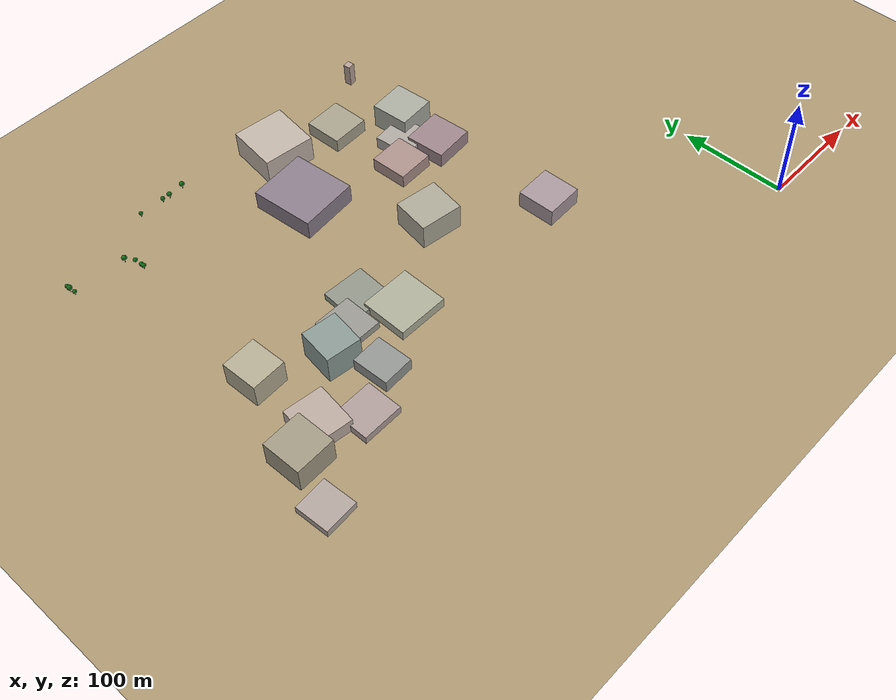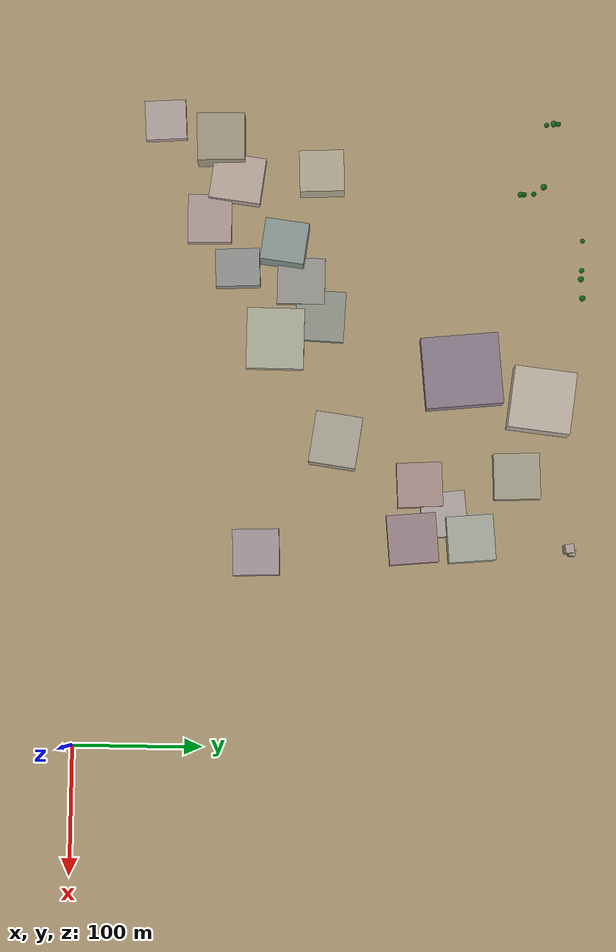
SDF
<sdf version="1.9">
 <world name="crossroad_world">
  <model name="ground_plane">
   <static>true</static>
   <pose>0 0 -0.05 0 0 0</pose>
   <link name="link">
    <collision name="collision">
     <geometry><plane><normal>0 0 1</normal><size>10000 10000</size></plane></geometry>
    </collision>
    <visual name="visual">
     <geometry><plane><normal>0 0 1</normal><size>15000 15000</size></plane></geometry>
     <material><ambient>0.68 0.60 0.45 1</ambient><diffuse>0.68 0.60 0.45 1</diffuse></material>
    </visual>
   </link>
  </model>
  <model name="tree_323">
   <static>true</static>
   <pose>-439.830 358.599 0 0 0 0</pose>
   <link name="link">
    <visual name="trunk">
     <pose>0 0 2.023 0 0 0</pose>
     <geometry><cylinder><radius>0.177</radius><length>4.046</length></cylinder></geometry>
     <material><ambient>0.38 0.22 0.08 1</ambient><diffuse>0.38 0.22 0.08 1</diffuse></material>
    </visual>
    <visual name="canopy">
     <pose>0 0 5.608 0 0 0</pose>
     <geometry><sphere><radius>2.402</radius></sphere></geometry>
     <material><ambient>0.08 0.44 0.10 1</ambient><diffuse>0.08 0.44 0.10 1</diffuse></material>
    </visual>
    <collision name="col">
     <pose>0 0 2.023 0 0 0</pose>
     <geometry><cylinder><radius>0.177</radius><length>4.046</length></cylinder></geometry>
    </collision>
   </link>
  </model>
  <model name="tree_324">
   <static>true</static>
   <pose>-433.762 340.612 0 0 0 0</pose>
   <link name="link">
    <visual name="trunk">
     <pose>0 0 1.796 0 0 0</pose>
     <geometry><cylinder><radius>0.157</radius><length>3.592</length></cylinder></geometry>
     <material><ambient>0.38 0.22 0.08 1</ambient><diffuse>0.38 0.22 0.08 1</diffuse></material>
    </visual>
    <visual name="canopy">
     <pose>0 0 4.979 0 0 0</pose>
     <geometry><sphere><radius>2.133</radius></sphere></geometry>
     <material><ambient>0.08 0.44 0.10 1</ambient><diffuse>0.08 0.44 0.10 1</diffuse></material>
    </visual>
    <collision name="col">
     <pose>0 0 1.796 0 0 0</pose>
     <geometry><cylinder><radius>0.157</radius><length>3.592</length></cylinder></geometry>
    </collision>
   </link>
  </model>
  <model name="tree_325">
   <static>true</static>
   <pose>-433.833 343.450 0 0 0 0</pose>
   <link name="link">
    <visual name="trunk">
     <pose>0 0 1.620 0 0 0</pose>
     <geometry><cylinder><radius>0.142</radius><length>3.240</length></cylinder></geometry>
     <material><ambient>0.38 0.22 0.08 1</ambient><diffuse>0.38 0.22 0.08 1</diffuse></material>
    </visual>
    <visual name="canopy">
     <pose>0 0 4.491 0 0 0</pose>
     <geometry><sphere><radius>1.924</radius></sphere></geometry>
     <material><ambient>0.08 0.44 0.10 1</ambient><diffuse>0.08 0.44 0.10 1</diffuse></material>
    </visual>
    <collision name="col">
     <pose>0 0 1.620 0 0 0</pose>
     <geometry><cylinder><radius>0.142</radius><length>3.240</length></cylinder></geometry>
    </collision>
   </link>
  </model>
  <model name="tree_326">
   <static>true</static>
   <pose>-434.414 350.988 0 0 0 0</pose>
   <link name="link">
    <visual name="trunk">
     <pose>0 0 1.570 0 0 0</pose>
     <geometry><cylinder><radius>0.137</radius><length>3.141</length></cylinder></geometry>
     <material><ambient>0.38 0.22 0.08 1</ambient><diffuse>0.38 0.22 0.08 1</diffuse></material>
    </visual>
    <visual name="canopy">
     <pose>0 0 4.353 0 0 0</pose>
     <geometry><sphere><radius>1.865</radius></sphere></geometry>
     <material><ambient>0.08 0.44 0.10 1</ambient><diffuse>0.08 0.44 0.10 1</diffuse></material>
    </visual>
    <collision name="col">
     <pose>0 0 1.570 0 0 0</pose>
     <geometry><cylinder><radius>0.137</radius><length>3.141</length></cylinder></geometry>
    </collision>
   </link>
  </model>
  <model name="tree_331">
   <static>true</static>
   <pose>-489.273 360.543 0 0 0 0</pose>
   <link name="link">
    <visual name="trunk">
     <pose>0 0 1.602 0 0 0</pose>
     <geometry><cylinder><radius>0.140</radius><length>3.204</length></cylinder></geometry>
     <material><ambient>0.38 0.22 0.08 1</ambient><diffuse>0.38 0.22 0.08 1</diffuse></material>
    </visual>
    <visual name="canopy">
     <pose>0 0 4.441 0 0 0</pose>
     <geometry><sphere><radius>1.902</radius></sphere></geometry>
     <material><ambient>0.08 0.44 0.10 1</ambient><diffuse>0.08 0.44 0.10 1</diffuse></material>
    </visual>
    <collision name="col">
     <pose>0 0 1.602 0 0 0</pose>
     <geometry><cylinder><radius>0.140</radius><length>3.204</length></cylinder></geometry>
    </collision>
   </link>
  </model>
  <model name="tree_332">
   <static>true</static>
   <pose>-490.112 366.101 0 0 0 0</pose>
   <link name="link">
    <visual name="trunk">
     <pose>0 0 2.001 0 0 0</pose>
     <geometry><cylinder><radius>0.175</radius><length>4.002</length></cylinder></geometry>
     <material><ambient>0.38 0.22 0.08 1</ambient><diffuse>0.38 0.22 0.08 1</diffuse></material>
    </visual>
    <visual name="canopy">
     <pose>0 0 5.546 0 0 0</pose>
     <geometry><sphere><radius>2.376</radius></sphere></geometry>
     <material><ambient>0.08 0.44 0.10 1</ambient><diffuse>0.08 0.44 0.10 1</diffuse></material>
    </visual>
    <collision name="col">
     <pose>0 0 2.001 0 0 0</pose>
     <geometry><cylinder><radius>0.175</radius><length>4.002</length></cylinder></geometry>
    </collision>
   </link>
  </model>
  <model name="tree_333">
   <static>true</static>
   <pose>-490.215 369.802 0 0 0 0</pose>
   <link name="link">
    <visual name="trunk">
     <pose>0 0 1.612 0 0 0</pose>
     <geometry><cylinder><radius>0.141</radius><length>3.225</length></cylinder></geometry>
     <material><ambient>0.38 0.22 0.08 1</ambient><diffuse>0.38 0.22 0.08 1</diffuse></material>
    </visual>
    <visual name="canopy">
     <pose>0 0 4.470 0 0 0</pose>
     <geometry><sphere><radius>1.915</radius></sphere></geometry>
     <material><ambient>0.08 0.44 0.10 1</ambient><diffuse>0.08 0.44 0.10 1</diffuse></material>
    </visual>
    <collision name="col">
     <pose>0 0 1.612 0 0 0</pose>
     <geometry><cylinder><radius>0.141</radius><length>3.225</length></cylinder></geometry>
    </collision>
   </link>
  </model>
  <model name="tree_373">
   <static>true</static>
   <pose>-367.651 388.334 0 0 0 0</pose>
   <link name="link">
    <visual name="trunk">
     <pose>0 0 1.823 0 0 0</pose>
     <geometry><cylinder><radius>0.159</radius><length>3.646</length></cylinder></geometry>
     <material><ambient>0.38 0.22 0.08 1</ambient><diffuse>0.38 0.22 0.08 1</diffuse></material>
    </visual>
    <visual name="canopy">
     <pose>0 0 5.053 0 0 0</pose>
     <geometry><sphere><radius>2.165</radius></sphere></geometry>
     <material><ambient>0.08 0.44 0.10 1</ambient><diffuse>0.08 0.44 0.10 1</diffuse></material>
    </visual>
    <collision name="col">
     <pose>0 0 1.823 0 0 0</pose>
     <geometry><cylinder><radius>0.159</radius><length>3.646</length></cylinder></geometry>
    </collision>
   </link>
  </model>
  <model name="tree_375">
   <static>true</static>
   <pose>-398.031 389.426 0 0 0 0</pose>
   <link name="link">
    <visual name="trunk">
     <pose>0 0 1.489 0 0 0</pose>
     <geometry><cylinder><radius>0.130</radius><length>2.977</length></cylinder></geometry>
     <material><ambient>0.38 0.22 0.08 1</ambient><diffuse>0.38 0.22 0.08 1</diffuse></material>
    </visual>
    <visual name="canopy">
     <pose>0 0 4.126 0 0 0</pose>
     <geometry><sphere><radius>1.768</radius></sphere></geometry>
     <material><ambient>0.08 0.44 0.10 1</ambient><diffuse>0.08 0.44 0.10 1</diffuse></material>
    </visual>
    <collision name="col">
     <pose>0 0 1.489 0 0 0</pose>
     <geometry><cylinder><radius>0.130</radius><length>2.977</length></cylinder></geometry>
    </collision>
   </link>
  </model>
  <model name="tree_386">
   <static>true</static>
   <pose>-352.649 389.533 0 0 0 0</pose>
   <link name="link">
    <visual name="trunk">
     <pose>0 0 1.959 0 0 0</pose>
     <geometry><cylinder><radius>0.171</radius><length>3.918</length></cylinder></geometry>
     <material><ambient>0.38 0.22 0.08 1</ambient><diffuse>0.38 0.22 0.08 1</diffuse></material>
    </visual>
    <visual name="canopy">
     <pose>0 0 5.430 0 0 0</pose>
     <geometry><sphere><radius>2.326</radius></sphere></geometry>
     <material><ambient>0.08 0.44 0.10 1</ambient><diffuse>0.08 0.44 0.10 1</diffuse></material>
    </visual>
    <collision name="col">
     <pose>0 0 1.959 0 0 0</pose>
     <geometry><cylinder><radius>0.171</radius><length>3.918</length></cylinder></geometry>
    </collision>
   </link>
  </model>
  <model name="tree_389">
   <static>true</static>
   <pose>-374.587 388.862 0 0 0 0</pose>
   <link name="link">
    <visual name="trunk">
     <pose>0 0 1.635 0 0 0</pose>
     <geometry><cylinder><radius>0.143</radius><length>3.270</length></cylinder></geometry>
     <material><ambient>0.38 0.22 0.08 1</ambient><diffuse>0.38 0.22 0.08 1</diffuse></material>
    </visual>
    <visual name="canopy">
     <pose>0 0 4.532 0 0 0</pose>
     <geometry><sphere><radius>1.942</radius></sphere></geometry>
     <material><ambient>0.08 0.44 0.10 1</ambient><diffuse>0.08 0.44 0.10 1</diffuse></material>
    </visual>
    <collision name="col">
     <pose>0 0 1.635 0 0 0</pose>
     <geometry><cylinder><radius>0.143</radius><length>3.270</length></cylinder></geometry>
    </collision>
   </link>
  </model>
  <model name="building_110">
   <static>true</static>
   <pose>-153.751 382.517 7.229 0 0 -0.103</pose>
   <link name="link">
    <visual name="body">
     <geometry><box><size>5.11 5.17 14.46</size></box></geometry>
     <material><ambient>0.61 0.59 0.51 1</ambient><diffuse>0.61 0.59 0.51 1</diffuse></material>
    </visual>
    <collision name="col"><geometry><box><size>5.11 5.17 14.46</size></box></geometry></collision>
   </link>
  </model>
  <model name="building_111">
   <static>true</static>
   <pose>-156.608 379.871 10.746 0 0 0.145</pose>
   <link name="link">
    <visual name="body">
     <geometry><box><size>6.75 6.68 21.49</size></box></geometry>
     <material><ambient>0.73 0.64 0.60 1</ambient><diffuse>0.73 0.64 0.60 1</diffuse></material>
    </visual>
    <collision name="col"><geometry><box><size>6.75 6.68 21.49</size></box></geometry></collision>
   </link>
  </model>
  <model name="building_112">
   <static>true</static>
   <pose>-212.109 339.457 6.630 0 0 0.042</pose>
   <link name="link">
    <visual name="body">
     <geometry><box><size>35.59 35.71 13.26</size></box></geometry>
     <material><ambient>0.66 0.64 0.56 1</ambient><diffuse>0.66 0.64 0.56 1</diffuse></material>
    </visual>
    <collision name="col"><geometry><box><size>35.59 35.71 13.26</size></box></geometry></collision>
   </link>
  </model>
  <model name="building_163">
   <static>true</static>
   <pose>-488.161 62.068 3.599 0 0 0.060</pose>
   <link name="link">
    <visual name="body">
     <geometry><box><size>30.86 31.97 7.20</size></box></geometry>
     <material><ambient>0.70 0.65 0.62 1</ambient><diffuse>0.70 0.65 0.62 1</diffuse></material>
    </visual>
    <collision name="col"><geometry><box><size>30.86 31.97 7.20</size></box></geometry></collision>
   </link>
  </model>
  <model name="building_167">
   <static>true</static>
   <pose>-150.237 139.134 8.430 0 0 0.033</pose>
   <link name="link">
    <visual name="body">
     <geometry><box><size>35.38 35.82 16.86</size></box></geometry>
     <material><ambient>0.66 0.60 0.62 1</ambient><diffuse>0.66 0.60 0.62 1</diffuse></material>
    </visual>
    <collision name="col"><geometry><box><size>35.38 35.82 16.86</size></box></geometry></collision>
   </link>
  </model>
  <model name="building_168">
   <static>true</static>
   <pose>-204.425 264.528 6.501 0 0 0.051</pose>
   <link name="link">
    <visual name="body">
     <geometry><box><size>34.38 34.92 13.00</size></box></geometry>
     <material><ambient>0.68 0.57 0.55 1</ambient><diffuse>0.68 0.57 0.55 1</diffuse></material>
    </visual>
    <collision name="col"><geometry><box><size>34.38 34.92 13.00</size></box></geometry></collision>
   </link>
  </model>
  <model name="building_169">
   <static>true</static>
   <pose>-237.095 199.035 12.381 0 0 -0.142</pose>
   <link name="link">
    <visual name="body">
     <geometry><box><size>39.86 36.30 24.76</size></box></geometry>
     <material><ambient>0.68 0.66 0.60 1</ambient><diffuse>0.68 0.66 0.60 1</diffuse></material>
    </visual>
    <collision name="col"><geometry><box><size>39.86 36.30 24.76</size></box></geometry></collision>
   </link>
  </model>
  <model name="building_170">
   <static>true</static>
   <pose>-371.615 120.676 6.071 0 0 0.045</pose>
   <link name="link">
    <visual name="body">
     <geometry><box><size>29.24 34.32 12.14</size></box></geometry>
     <material><ambient>0.58 0.59 0.58 1</ambient><diffuse>0.58 0.59 0.58 1</diffuse></material>
    </visual>
    <collision name="col"><geometry><box><size>29.24 34.32 12.14</size></box></geometry></collision>
   </link>
  </model>
  <model name="building_407">
   <static>true</static>
   <pose>-316.941 150.885 4.627 0 0 -0.007</pose>
   <link name="link">
    <visual name="body">
     <geometry><box><size>47.39 44.65 9.25</size></box></geometry>
     <material><ambient>0.69 0.69 0.61 1</ambient><diffuse>0.69 0.69 0.61 1</diffuse></material>
    </visual>
    <collision name="col"><geometry><box><size>47.39 44.65 9.25</size></box></geometry></collision>
   </link>
  </model>
  <model name="building_410">
   <static>true</static>
   <pose>-335.419 185.673 3.365 0 0 -0.046</pose>
   <link name="link">
    <visual name="body">
     <geometry><box><size>39.25 37.99 6.73</size></box></geometry>
     <material><ambient>0.57 0.59 0.54 1</ambient><diffuse>0.57 0.59 0.54 1</diffuse></material>
    </visual>
    <collision name="col"><geometry><box><size>39.25 37.99 6.73</size></box></geometry></collision>
   </link>
  </model>
  <model name="building_416">
   <static>true</static>
   <pose>-362.544 170.205 3.513 0 0 -0.006</pose>
   <link name="link">
    <visual name="body">
     <geometry><box><size>35.94 37.07 7.03</size></box></geometry>
     <material><ambient>0.61 0.60 0.57 1</ambient><diffuse>0.61 0.60 0.57 1</diffuse></material>
    </visual>
    <collision name="col"><geometry><box><size>35.94 37.07 7.03</size></box></geometry></collision>
   </link>
  </model>
  <model name="building_532">
   <static>true</static>
   <pose>-292.949 295.876 9.423 0 0 0.097</pose>
   <link name="link">
    <visual name="body">
     <geometry><box><size>55.14 60.00 18.85</size></box></geometry>
     <material><ambient>0.55 0.50 0.55 1</ambient><diffuse>0.55 0.50 0.55 1</diffuse></material>
    </visual>
    <collision name="col"><geometry><box><size>55.14 60.00 18.85</size></box></geometry></collision>
   </link>
  </model>
  <model name="building_533">
   <static>true</static>
   <pose>-270.439 357.580 12.829 0 0 -0.116</pose>
   <link name="link">
    <visual name="body">
     <geometry><box><size>47.92 48.09 25.66</size></box></geometry>
     <material><ambient>0.76 0.71 0.66 1</ambient><diffuse>0.76 0.71 0.66 1</diffuse></material>
    </visual>
    <collision name="col"><geometry><box><size>47.92 48.09 25.66</size></box></geometry></collision>
   </link>
  </model>
  <model name="building_545">
   <static>true</static>
   <pose>-410.477 98.107 3.867 0 0 0.011</pose>
   <link name="link">
    <visual name="body">
     <geometry><box><size>37.61 34.03 7.73</size></box></geometry>
     <material><ambient>0.69 0.62 0.61 1</ambient><diffuse>0.69 0.62 0.61 1</diffuse></material>
    </visual>
    <collision name="col"><geometry><box><size>37.61 34.03 7.73</size></box></geometry></collision>
   </link>
  </model>
  <model name="building_561">
   <static>true</static>
   <pose>-446.266 184.955 11.857 0 0 0.039</pose>
   <link name="link">
    <visual name="body">
     <geometry><box><size>32.13 34.47 23.71</size></box></geometry>
     <material><ambient>0.71 0.68 0.58 1</ambient><diffuse>0.71 0.68 0.58 1</diffuse></material>
    </visual>
    <collision name="col"><geometry><box><size>32.13 34.47 23.71</size></box></geometry></collision>
   </link>
  </model>
  <model name="building_562">
   <static>true</static>
   <pose>-162.525 259.538 7.148 0 0 0.088</pose>
   <link name="link">
    <visual name="body">
     <geometry><box><size>38.19 38.09 14.30</size></box></geometry>
     <material><ambient>0.62 0.53 0.55 1</ambient><diffuse>0.62 0.53 0.55 1</diffuse></material>
    </visual>
    <collision name="col"><geometry><box><size>38.19 38.09 14.30</size></box></geometry></collision>
   </link>
  </model>
  <model name="building_563">
   <static>true</static>
   <pose>-181.834 283.529 5.862 0 0 0.111</pose>
   <link name="link">
    <visual name="body">
     <geometry><box><size>34.55 34.83 11.72</size></box></geometry>
     <material><ambient>0.69 0.66 0.64 1</ambient><diffuse>0.69 0.66 0.64 1</diffuse></material>
    </visual>
    <collision name="col"><geometry><box><size>34.55 34.83 11.72</size></box></geometry></collision>
   </link>
  </model>
  <model name="building_571">
   <static>true</static>
   <pose>-162.994 303.950 11.984 0 0 0.084</pose>
   <link name="link">
    <visual name="body">
     <geometry><box><size>35.13 36.04 23.97</size></box></geometry>
     <material><ambient>0.67 0.68 0.63 1</ambient><diffuse>0.67 0.68 0.63 1</diffuse></material>
    </visual>
    <collision name="col"><geometry><box><size>35.13 36.04 23.97</size></box></geometry></collision>
   </link>
  </model>
  <model name="building_680">
   <static>true</static>
   <pose>-471.848 106.358 12.541 0 0 0.027</pose>
   <link name="link">
    <visual name="body">
     <geometry><box><size>36.74 36.95 25.08</size></box></geometry>
     <material><ambient>0.64 0.61 0.52 1</ambient><diffuse>0.64 0.61 0.52 1</diffuse></material>
    </visual>
    <collision name="col"><geometry><box><size>36.74 36.95 25.08</size></box></geometry></collision>
   </link>
  </model>
  <model name="building_681">
   <static>true</static>
   <pose>-441.803 119.297 6.712 0 0 -0.129</pose>
   <link name="link">
    <visual name="body">
     <geometry><box><size>36.00 40.19 13.42</size></box></geometry>
     <material><ambient>0.74 0.67 0.63 1</ambient><diffuse>0.74 0.67 0.63 1</diffuse></material>
    </visual>
    <collision name="col"><geometry><box><size>36.00 40.19 13.42</size></box></geometry></collision>
   </link>
  </model>
  <model name="building_682">
   <static>true</static>
   <pose>-390.117 157.220 13.910 0 0 -0.132</pose>
   <link name="link">
    <visual name="body">
     <geometry><box><size>32.13 34.04 27.82</size></box></geometry>
     <material><ambient>0.55 0.61 0.59 1</ambient><diffuse>0.55 0.61 0.59 1</diffuse></material>
    </visual>
    <collision name="col"><geometry><box><size>32.13 34.04 27.82</size></box></geometry></collision>
   </link>
  </model>
 </world>
</sdf>
